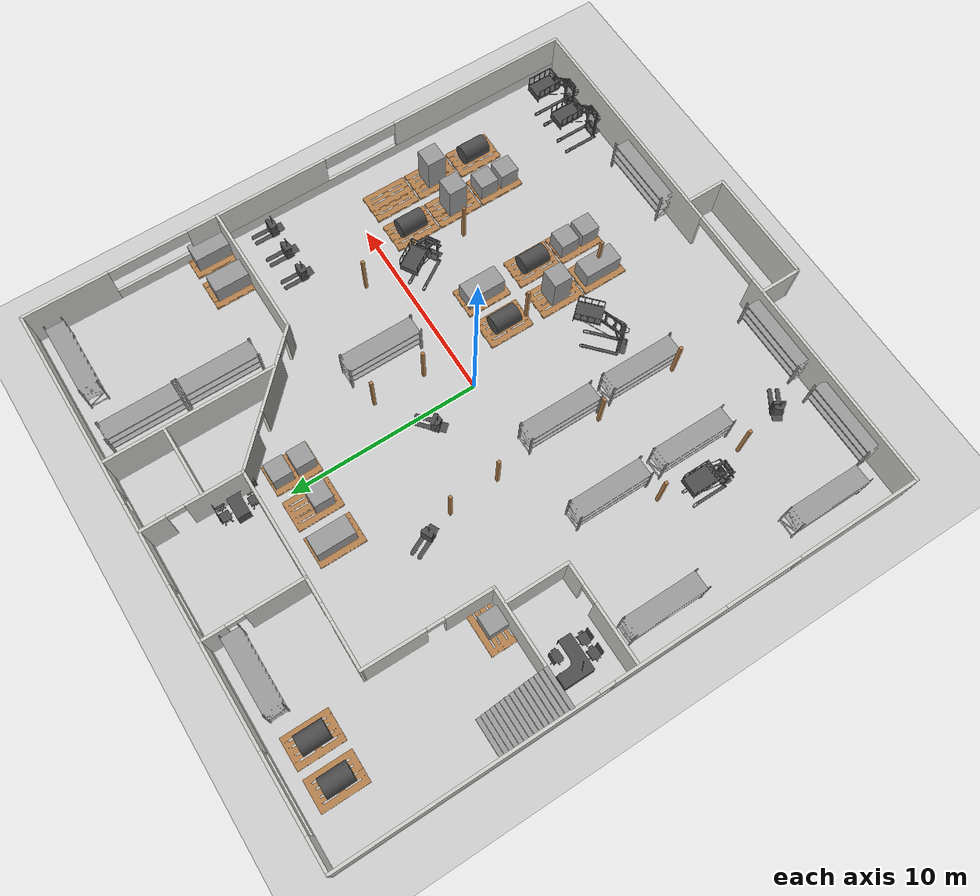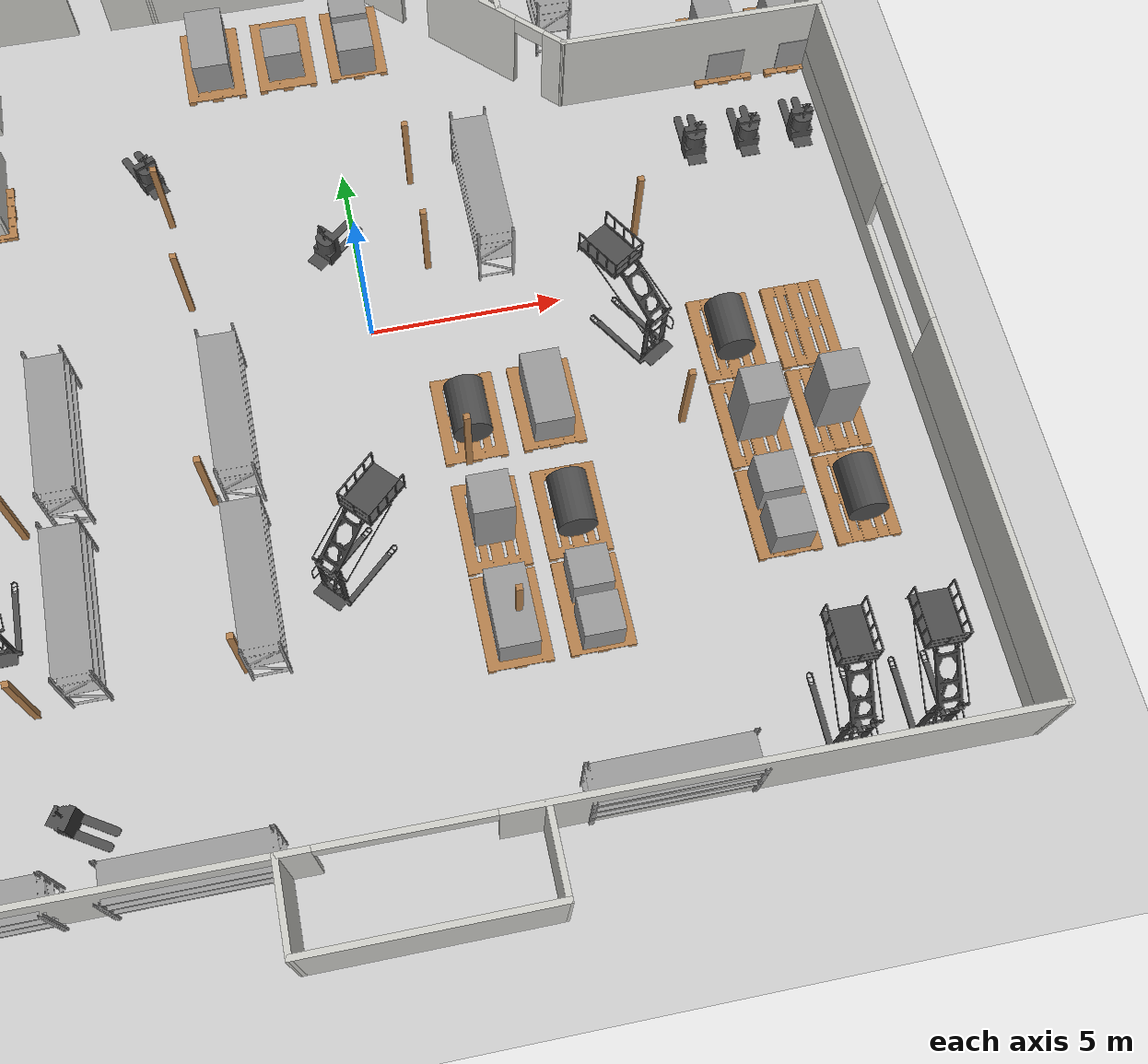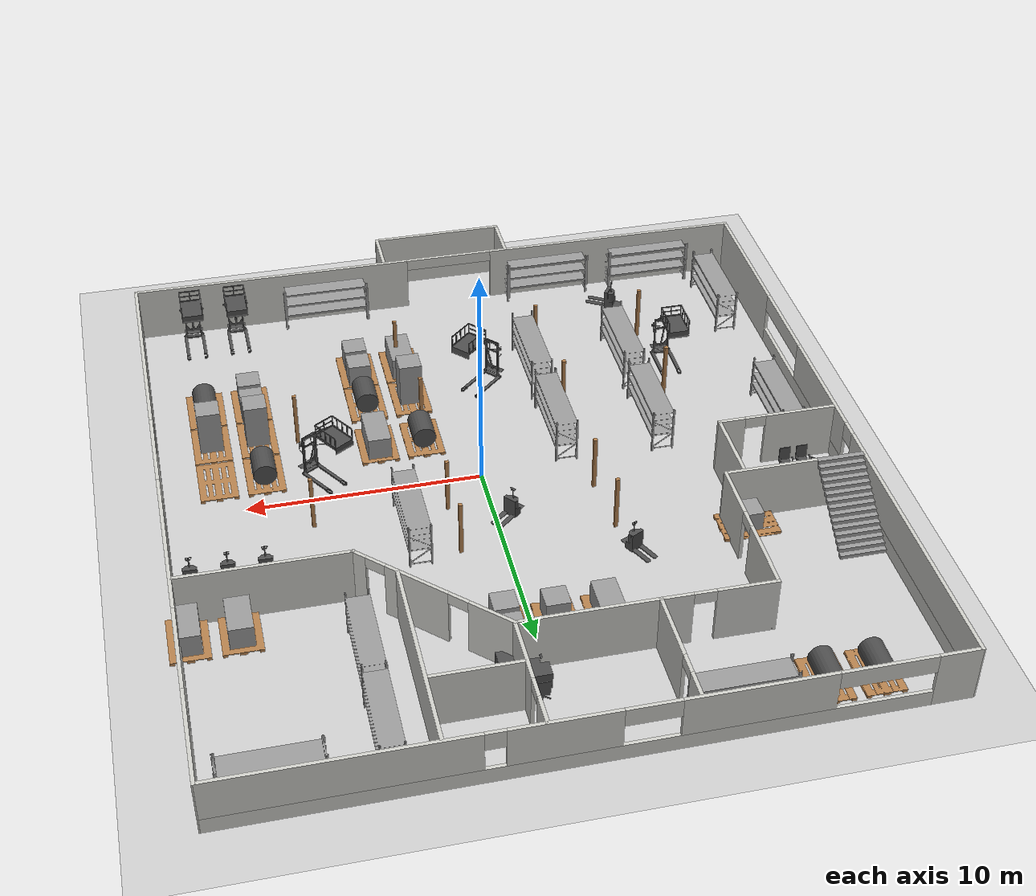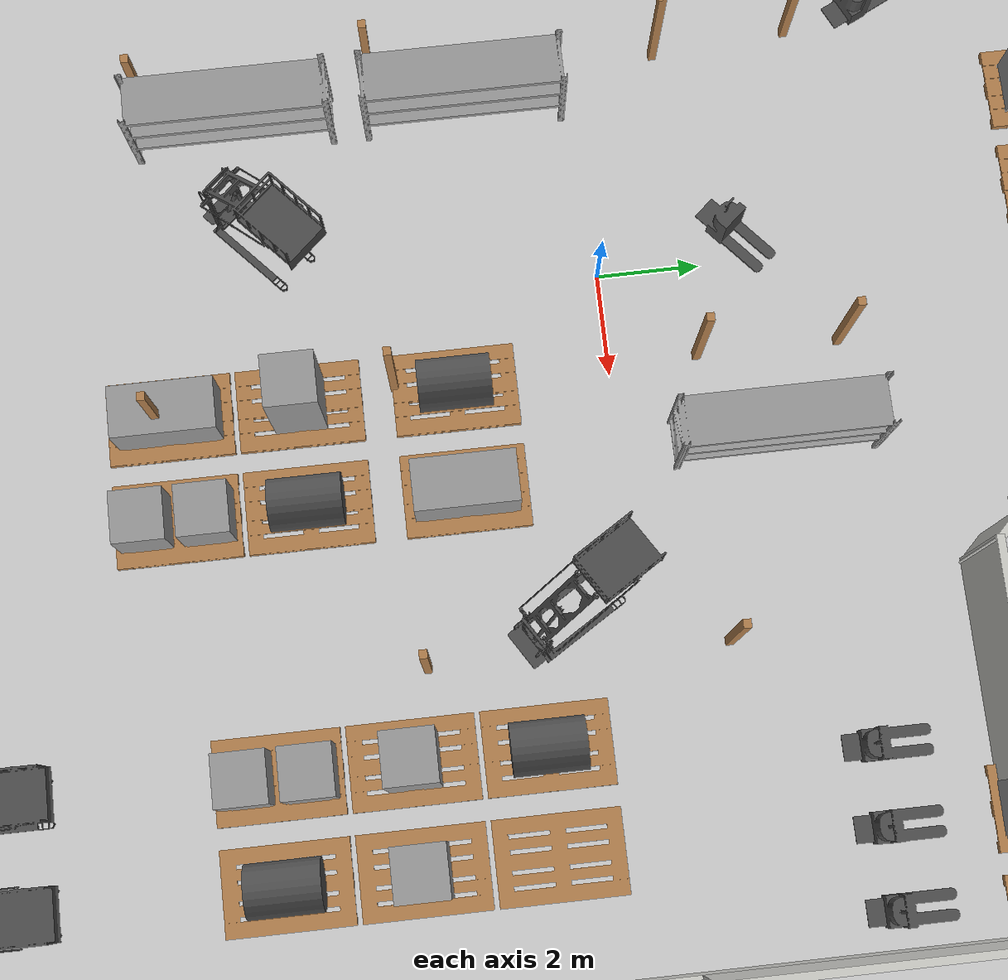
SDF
<sdf version="1.5">
 <world name="default">
  <include><uri>model://sun</uri></include>
  <include><uri>model://ground_plane</uri></include>
  <include><uri>model://Warehouse</uri><name>Warehouse</name></include>
  <include><uri>model://office_desk</uri><pose>-14 3 0 0 0 0</pose></include>
  <include><uri>model://warehouse_elevator</uri><pose>-2 -7 0 0 0 -0.83</pose></include>
  <include><uri>model://warehouse_elevator</uri><pose>7 -2 0 0 0 0.56</pose></include>
  <include><uri>model://warehouse_elevator</uri><pose>-10 -7 0 0 0 0</pose></include>
  <include><uri>model://warehouse_elevator</uri><pose>9 -13 0 0 0 0</pose></include>
  <include><uri>model://warehouse_elevator</uri><pose>11 -13 0 0 0 0</pose></include>
  <include><uri>model://pallet</uri><pose>11 -7 0 0 0 0</pose></include>
  <include><uri>model://pallet</uri><pose>9 -7 0 0 0 0</pose></include>
  <include><uri>model://pallet</uri><pose>11 -4.5 0 0 0 0</pose></include>
  <include><uri>model://pallet</uri><pose>9 -4.5 0 0 0 0</pose></include>
  <include><uri>model://pallet</uri><pose>11 -2 0 0 0 0</pose></include>
  <include><uri>model://pallet</uri><pose>9 -2 0 0 0 0</pose></include>
  <include><uri>model://pallet</uri><pose>1 9.4 0 0 0 0</pose></include>
  <include><uri>model://pallet</uri><pose>-1 9.4 0 0 0 0</pose></include>
  <include><uri>model://pallet</uri><pose>-3 9.4 0 0 0 0</pose></include>
  <include><uri>model://pallet</uri><pose>2 -8.5 0 0 0 0</pose></include>
  <include><uri>model://pallet</uri><pose>2 -6 0 0 0 0</pose></include>
  <include><uri>model://pallet</uri><pose>2 -3 0 0 0 0</pose></include>
  <include><uri>model://pallet</uri><pose>4 -8.5 0 0 0 0</pose></include>
  <include><uri>model://pallet</uri><pose>4 -6 0 0 0 0</pose></include>
  <include><uri>model://pallet</uri><pose>4 -3 0 0 0 0</pose></include>
  <include><uri>model://shelving_long</uri><pose>-13 -12 0 0 0 0</pose></include>
  <include><uri>model://shelving_long</uri><pose>-13 -3 0 0 0 0</pose></include>
  <include><uri>model://shelving_long</uri><pose>-7.53 -8.6 0 0 0 0</pose></include>
  <include><uri>model://shelving_long</uri><pose>-7.53 -4 0 0 0 0</pose></include>
  <include><uri>model://shelving_long</uri><pose>-3.32 -4.22 0 0 0 0</pose></include>
  <include><uri>model://shelving_long</uri><pose>-3.32 -8.76 0 0 0 0</pose></include>
  <include><uri>model://shelving_long</uri><pose>-9 -12.7 0 0 0 1.57079</pose></include>
  <include><uri>model://shelving_long</uri><pose>-4 -12.7 0 0 0 1.57079</pose></include>
  <include><uri>model://shelving_long</uri><pose>6.7 -12.7 0 0 0 1.57079</pose></include>
  <include><uri>model://shelving_long</uri><pose>4 1 0 0 0 0</pose></include>
  <include><uri>model://fork_lift</uri><pose>8 5 0 0 0 0</pose></include>
  <include><uri>model://fork_lift</uri><pose>9.5 5 0 0 0 0</pose></include>
  <include><uri>model://fork_lift</uri><pose>11 5 0 0 0 0</pose></include>
  <include><uri>model://fork_lift</uri><pose>-7 6 0 0 0 0.45</pose></include>
  <include><uri>model://fork_lift</uri><pose>-1 4.5 0 0 0 -0.86</pose></include>
  <include><uri>model://fork_lift</uri><pose>-7 -10.5 0 0 0 -2.12</pose></include>
  <include><uri>model://square_box</uri><pose>1 10 0.64 0 0 0</pose></include>
  <include><uri>model://square_box</uri><pose>1 8.8 0.64 0 0 0</pose></include>
  <include><uri>model://square_box</uri><pose>-1 9 0.64 0 0 0</pose></include>
  <include><uri>model://rectangular_box</uri><pose>-3 9.5 0.64 0 0 0</pose></include>
  <include><uri>model://rectangular_box</uri><pose>11 7.15 0.64 0 0 0</pose></include>
  <include><uri>model://rectangular_box</uri><pose>13 7.15 0.64 0 0 0</pose></include>
  <include><uri>model://square_box</uri><pose>-10 5.5 0.5 0 0 0</pose></include>
  <include><uri>model://cylinder_box</uri><pose>-10 14.5 0.64 1.57079 0 0</pose></include>
  <include><uri>model://cylinder_box</uri><pose>-12 14.5 0.64 1.57079 0 0</pose></include>
  <include><uri>model://rectangular_box</uri><pose>2 -8.5 0.64 0 0 0</pose></include>
  <include><uri>model://rectangular_box</uri><pose>2 -6 1.14 1.57079 0 0</pose></include>
  <include><uri>model://square_box</uri><pose>4 -7.9 0.64 0 0 0</pose></include>
  <include><uri>model://square_box</uri><pose>4 -9.1 0.64 0 0 0</pose></include>
  <include><uri>model://cylinder_box</uri><pose>2 -3 0.64 1.57079 0 0</pose></include>
  <include><uri>model://cylinder_box</uri><pose>4 -6 0.64 1.57079 0 0</pose></include>
  <include><uri>model://rectangular_box</uri><pose>4 -3 0.64 0 0 0</pose></include>
  <include><uri>model://square_box</uri><pose>9 -7.6 0.64 0 0 0</pose></include>
  <include><uri>model://square_box</uri><pose>9 -6.4 0.64 0 0 0</pose></include>
  <include><uri>model://cylinder_box</uri><pose>11 -7 0.64 1.57079 0 0</pose></include>
  <include><uri>model://cylinder_box</uri><pose>9 -2 0.64 1.57079 0 0</pose></include>
  <include><uri>model://rectangular_box</uri><pose>9 -4.5 1.14 1.57079 0 0</pose></include>
  <include><uri>model://rectangular_box</uri><pose>11 -4.5 1.14 1.57079 0 0</pose></include>
  <include><uri>model://office_desk</uri><pose>1.8 12.6 0 0 0 3.14159</pose></include>
  <include><uri>model://office_desk</uri><pose>1.8 12.6 0 0 0 3.14159</pose></include>
  <include><uri>model://pallet</uri><pose>-12 14.55 0 0 0 0</pose></include>
  <include><uri>model://pallet</uri><pose>-10 14.55 0 0 0 0</pose></include>
  <include><uri>model://pallet</uri><pose>-10 5.5 0 0 0 -1.57079</pose></include>
  <include><uri>model://shelving_long</uri><pose>-4.5 15.75 0 0 0 1.57079</pose></include>
  <include><uri>model://pallet</uri><pose>13 7.2 0 0 0 0</pose></include>
  <include><uri>model://pallet</uri><pose>11 7.2 0 0 0 0</pose></include>
  <include><uri>model://shelving_long</uri><pose>7 12 0 0 0 0</pose></include>
  <include><uri>model://shelving_long</uri><pose>7 8 0 0 0 0</pose></include>
  <include><uri>model://shelving_long</uri><pose>12.7 15.9 0 0 0 1.57079</pose></include>
 </world>
</sdf>

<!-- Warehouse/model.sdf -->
<sdf version='1.5'>
  <model name='Warehouse'>
    <pose>-0.828821 0.478615 0 0 -0 0</pose>
    <link name='Stairs_0'>
      <visual name='Stairs_0_Visual_0'>
        <pose>-13.1664 7.72962 0.083333 0 -0 0</pose>
        <geometry>
          <box>
            <size>2 0.233333 0.166667</size>
          </box>
        </geometry>
        <material>
          <script>
            <uri>file://media/materials/scripts/gazebo.material</uri>
            <name>Gazebo/Grey</name>
          </script>
          <ambient>1 1 1 1</ambient>
        </material>
      </visual>
      <collision name='Stairs_0_Collision_0'>
        <geometry>
          <box>
            <size>2 0.233333 0.166667</size>
          </box>
        </geometry>
        <pose>-13.1664 7.72962 0.083333 0 -0 0</pose>
      </collision>
      <visual name='Stairs_0_Visual_1'>
        <pose>-13.1664 7.49628 0.25 0 -0 0</pose>
        <geometry>
          <box>
            <size>2 0.233335 0.166668</size>
          </box>
        </geometry>
        <material>
          <script>
            <uri>file://media/materials/scripts/gazebo.material</uri>
            <name>Gazebo/Grey</name>
          </script>
          <ambient>1 1 1 1</ambient>
        </material>
      </visual>
      <collision name='Stairs_0_Collision_1'>
        <geometry>
          <box>
            <size>2 0.233335 0.166668</size>
          </box>
        </geometry>
        <pose>-13.1664 7.49628 0.25 0 -0 0</pose>
      </collision>
      <visual name='Stairs_0_Visual_2'>
        <pose>-13.1664 7.26295 0.416667 0 -0 0</pose>
        <geometry>
          <box>
            <size>2 0.233335 0.166668</size>
          </box>
        </geometry>
        <material>
          <script>
            <uri>file://media/materials/scripts/gazebo.material</uri>
            <name>Gazebo/Grey</name>
          </script>
          <ambient>1 1 1 1</ambient>
        </material>
      </visual>
      <collision name='Stairs_0_Collision_2'>
        <geometry>
          <box>
            <size>2 0.233335 0.166668</size>
          </box>
        </geometry>
        <pose>-13.1664 7.26295 0.416667 0 -0 0</pose>
      </collision>
      <visual name='Stairs_0_Visual_3'>
        <pose>-13.1664 7.02962 0.583333 0 -0 0</pose>
        <geometry>
          <box>
            <size>2 0.233335 0.166668</size>
          </box>
        </geometry>
        <material>
          <script>
            <uri>file://media/materials/scripts/gazebo.material</uri>
            <name>Gazebo/Grey</name>
          </script>
          <ambient>1 1 1 1</ambient>
        </material>
      </visual>
      <collision name='Stairs_0_Collision_3'>
        <geometry>
          <box>
            <size>2 0.233335 0.166668</size>
          </box>
        </geometry>
        <pose>-13.1664 7.02962 0.583333 0 -0 0</pose>
      </collision>
      <visual name='Stairs_0_Visual_4'>
        <pose>-13.1664 6.79628 0.75 0 -0 0</pose>
        <geometry>
          <box>
            <size>2 0.233335 0.166668</size>
          </box>
        </geometry>
        <material>
          <script>
            <uri>file://media/materials/scripts/gazebo.material</uri>
            <name>Gazebo/Grey</name>
          </script>
          <ambient>1 1 1 1</ambient>
        </material>
      </visual>
      <collision name='Stairs_0_Collision_4'>
        <geometry>
          <box>
            <size>2 0.233335 0.166668</size>
          </box>
        </geometry>
        <pose>-13.1664 6.79628 0.75 0 -0 0</pose>
      </collision>
      <visual name='Stairs_0_Visual_5'>
        <pose>-13.1664 6.56295 0.916667 0 -0 0</pose>
        <geometry>
          <box>
            <size>2 0.233335 0.166668</size>
          </box>
        </geometry>
        <material>
          <script>
            <uri>file://media/materials/scripts/gazebo.material</uri>
            <name>Gazebo/Grey</name>
          </script>
          <ambient>1 1 1 1</ambient>
        </material>
      </visual>
      <collision name='Stairs_0_Collision_5'>
        <geometry>
          <box>
            <size>2 0.233335 0.166668</size>
          </box>
        </geometry>
        <pose>-13.1664 6.56295 0.916667 0 -0 0</pose>
      </collision>
      <visual name='Stairs_0_Visual_6'>
        <pose>-13.1664 6.32962 1.08333 0 -0 0</pose>
        <geometry>
          <box>
            <size>2 0.233335 0.166668</size>
          </box>
        </geometry>
        <material>
          <script>
            <uri>file://media/materials/scripts/gazebo.material</uri>
            <name>Gazebo/Grey</name>
          </script>
          <ambient>1 1 1 1</ambient>
        </material>
      </visual>
      <collision name='Stairs_0_Collision_6'>
        <geometry>
          <box>
            <size>2 0.233335 0.166668</size>
          </box>
        </geometry>
        <pose>-13.1664 6.32962 1.08333 0 -0 0</pose>
      </collision>
      <visual name='Stairs_0_Visual_7'>
        <pose>-13.1664 6.09628 1.25 0 -0 0</pose>
        <geometry>
          <box>
            <size>2 0.233335 0.166668</size>
          </box>
        </geometry>
        <material>
          <script>
            <uri>file://media/materials/scripts/gazebo.material</uri>
            <name>Gazebo/Grey</name>
          </script>
          <ambient>1 1 1 1</ambient>
        </material>
      </visual>
      <collision name='Stairs_0_Collision_7'>
        <geometry>
          <box>
            <size>2 0.233335 0.166668</size>
          </box>
        </geometry>
        <pose>-13.1664 6.09628 1.25 0 -0 0</pose>
      </collision>
      <visual name='Stairs_0_Visual_8'>
        <pose>-13.1664 5.86295 1.41667 0 -0 0</pose>
        <geometry>
          <box>
            <size>2 0.233335 0.166668</size>
          </box>
        </geometry>
        <material>
          <script>
            <uri>file://media/materials/scripts/gazebo.material</uri>
            <name>Gazebo/Grey</name>
          </script>
          <ambient>1 1 1 1</ambient>
        </material>
      </visual>
      <collision name='Stairs_0_Collision_8'>
        <geometry>
          <box>
            <size>2 0.233335 0.166668</size>
          </box>
        </geometry>
        <pose>-13.1664 5.86295 1.41667 0 -0 0</pose>
      </collision>
      <visual name='Stairs_0_Visual_9'>
        <pose>-13.1664 5.62962 1.58333 0 -0 0</pose>
        <geometry>
          <box>
            <size>2 0.233335 0.166668</size>
          </box>
        </geometry>
        <material>
          <script>
            <uri>file://media/materials/scripts/gazebo.material</uri>
            <name>Gazebo/Grey</name>
          </script>
          <ambient>1 1 1 1</ambient>
        </material>
      </visual>
      <collision name='Stairs_0_Collision_9'>
        <geometry>
          <box>
            <size>2 0.233335 0.166668</size>
          </box>
        </geometry>
        <pose>-13.1664 5.62962 1.58333 0 -0 0</pose>
      </collision>
      <visual name='Stairs_0_Visual_10'>
        <pose>-13.1664 5.39628 1.75 0 -0 0</pose>
        <geometry>
          <box>
            <size>2 0.233335 0.166668</size>
          </box>
        </geometry>
        <material>
          <script>
            <uri>file://media/materials/scripts/gazebo.material</uri>
            <name>Gazebo/Grey</name>
          </script>
          <ambient>1 1 1 1</ambient>
        </material>
      </visual>
      <collision name='Stairs_0_Collision_10'>
        <geometry>
          <box>
            <size>2 0.233335 0.166668</size>
          </box>
        </geometry>
        <pose>-13.1664 5.39628 1.75 0 -0 0</pose>
      </collision>
      <visual name='Stairs_0_Visual_11'>
        <pose>-13.1664 5.16295 1.91667 0 -0 0</pose>
        <geometry>
          <box>
            <size>2 0.233335 0.166668</size>
          </box>
        </geometry>
        <material>
          <script>
            <uri>file://media/materials/scripts/gazebo.material</uri>
            <name>Gazebo/Grey</name>
          </script>
          <ambient>1 1 1 1</ambient>
        </material>
      </visual>
      <collision name='Stairs_0_Collision_11'>
        <geometry>
          <box>
            <size>2 0.233335 0.166668</size>
          </box>
        </geometry>
        <pose>-13.1664 5.16295 1.91667 0 -0 0</pose>
      </collision>
      <visual name='Stairs_0_Visual_12'>
        <pose>-13.1664 4.92962 2.08333 0 -0 0</pose>
        <geometry>
          <box>
            <size>2 0.233335 0.166668</size>
          </box>
        </geometry>
        <material>
          <script>
            <uri>file://media/materials/scripts/gazebo.material</uri>
            <name>Gazebo/Grey</name>
          </script>
          <ambient>1 1 1 1</ambient>
        </material>
      </visual>
      <collision name='Stairs_0_Collision_12'>
        <geometry>
          <box>
            <size>2 0.233335 0.166668</size>
          </box>
        </geometry>
        <pose>-13.1664 4.92962 2.08333 0 -0 0</pose>
      </collision>
      <visual name='Stairs_0_Visual_13'>
        <pose>-13.1664 4.69628 2.25 0 -0 0</pose>
        <geometry>
          <box>
            <size>2 0.233335 0.166668</size>
          </box>
        </geometry>
        <material>
          <script>
            <uri>file://media/materials/scripts/gazebo.material</uri>
            <name>Gazebo/Grey</name>
          </script>
          <ambient>1 1 1 1</ambient>
        </material>
      </visual>
      <collision name='Stairs_0_Collision_13'>
        <geometry>
          <box>
            <size>2 0.233335 0.166668</size>
          </box>
        </geometry>
        <pose>-13.1664 4.69628 2.25 0 -0 0</pose>
      </collision>
      <visual name='Stairs_0_Visual_14'>
        <pose>-13.1664 4.46295 2.41667 0 -0 0</pose>
        <geometry>
          <box>
            <size>2 0.233335 0.166668</size>
          </box>
        </geometry>
        <material>
          <script>
            <uri>file://media/materials/scripts/gazebo.material</uri>
            <name>Gazebo/Grey</name>
          </script>
          <ambient>1 1 1 1</ambient>
        </material>
      </visual>
      <collision name='Stairs_0_Collision_14'>
        <geometry>
          <box>
            <size>2 0.233335 0.166668</size>
          </box>
        </geometry>
        <pose>-13.1664 4.46295 2.41667 0 -0 0</pose>
      </collision>
    </link>
    <link name='Wall_0'>
      <pose>-0.02636 16.0163 0 0 -0 0.002368</pose>
      <visual name='Wall_0_Visual_0'>
        <pose>-13.3852 0 1.25 0 -0 0</pose>
        <geometry>
          <box>
            <size>1.73847 0.15 2.5</size>
          </box>
        </geometry>
        <material>
          <script>
            <uri>file://media/materials/scripts/gazebo.material</uri>
            <name>Gazebo/CeilingTiled</name>
          </script>
          <ambient>1 1 1 1</ambient>
        </material>
      </visual>
      <collision name='Wall_0_Collision_0'>
        <geometry>
          <box>
            <size>1.73847 0.15 2.5</size>
          </box>
        </geometry>
        <pose>-13.3852 0 1.25 0 -0 0</pose>
      </collision>
      <visual name='Wall_0_Visual_1'>
        <pose>0.869234 0 0.35 0 -0 0</pose>
        <geometry>
          <box>
            <size>26.7704 0.15 0.7</size>
          </box>
        </geometry>
        <material>
          <script>
            <uri>file://media/materials/scripts/gazebo.material</uri>
            <name>Gazebo/CeilingTiled</name>
          </script>
          <ambient>1 1 1 1</ambient>
        </material>
      </visual>
      <collision name='Wall_0_Collision_1'>
        <geometry>
          <box>
            <size>26.7704 0.15 0.7</size>
          </box>
        </geometry>
        <pose>0.869234 0 0.35 0 -0 0</pose>
      </collision>
      <visual name='Wall_0_Visual_2'>
        <pose>-5.8172 0 1.6 0 -0 0</pose>
        <geometry>
          <box>
            <size>5.85391 0.15 1.8</size>
          </box>
        </geometry>
        <material>
          <script>
            <uri>file://media/materials/scripts/gazebo.material</uri>
            <name>Gazebo/CeilingTiled</name>
          </script>
          <ambient>1 1 1 1</ambient>
        </material>
      </visual>
      <collision name='Wall_0_Collision_2'>
        <geometry>
          <box>
            <size>5.85391 0.15 1.8</size>
          </box>
        </geometry>
        <pose>-5.8172 0 1.6 0 -0 0</pose>
      </collision>
      <visual name='Wall_0_Visual_3'>
        <pose>1.3669 0 1.6 0 -0 0</pose>
        <geometry>
          <box>
            <size>4.22553 0.15 1.8</size>
          </box>
        </geometry>
        <material>
          <script>
            <uri>file://media/materials/scripts/gazebo.material</uri>
            <name>Gazebo/CeilingTiled</name>
          </script>
          <ambient>1 1 1 1</ambient>
        </material>
      </visual>
      <collision name='Wall_0_Collision_3'>
        <geometry>
          <box>
            <size>4.22553 0.15 1.8</size>
          </box>
        </geometry>
        <pose>1.3669 0 1.6 0 -0 0</pose>
      </collision>
      <visual name='Wall_0_Visual_4'>
        <pose>9.26704 0 1.6 0 -0 0</pose>
        <geometry>
          <box>
            <size>9.97475 0.15 1.8</size>
          </box>
        </geometry>
        <material>
          <script>
            <uri>file://media/materials/scripts/gazebo.material</uri>
            <name>Gazebo/CeilingTiled</name>
          </script>
          <ambient>1 1 1 1</ambient>
        </material>
      </visual>
      <collision name='Wall_0_Collision_4'>
        <geometry>
          <box>
            <size>9.97475 0.15 1.8</size>
          </box>
        </geometry>
        <pose>9.26704 0 1.6 0 -0 0</pose>
      </collision>
      <visual name='Wall_0_Visual_5'>
        <pose>-10.6301 0 2.1 0 -0 0</pose>
        <geometry>
          <box>
            <size>3.7718 0.15 0.8</size>
          </box>
        </geometry>
        <material>
          <script>
            <uri>file://media/materials/scripts/gazebo.material</uri>
            <name>Gazebo/CeilingTiled</name>
          </script>
          <ambient>1 1 1 1</ambient>
        </material>
      </visual>
      <collision name='Wall_0_Collision_5'>
        <geometry>
          <box>
            <size>3.7718 0.15 0.8</size>
          </box>
        </geometry>
        <pose>-10.6301 0 2.1 0 -0 0</pose>
      </collision>
      <visual name='Wall_0_Visual_6'>
        <pose>-1.81805 0 2.1 0 -0 0</pose>
        <geometry>
          <box>
            <size>2.14438 0.15 0.8</size>
          </box>
        </geometry>
        <material>
          <script>
            <uri>file://media/materials/scripts/gazebo.material</uri>
            <name>Gazebo/CeilingTiled</name>
          </script>
          <ambient>1 1 1 1</ambient>
        </material>
      </visual>
      <collision name='Wall_0_Collision_6'>
        <geometry>
          <box>
            <size>2.14438 0.15 0.8</size>
          </box>
        </geometry>
        <pose>-1.81805 0 2.1 0 -0 0</pose>
      </collision>
      <visual name='Wall_0_Visual_7'>
        <pose>3.87967 0 2.1 0 -0 0</pose>
        <geometry>
          <box>
            <size>0.8 0.15 0.8</size>
          </box>
        </geometry>
        <material>
          <script>
            <uri>file://media/materials/scripts/gazebo.material</uri>
            <name>Gazebo/CeilingTiled</name>
          </script>
          <ambient>1 1 1 1</ambient>
        </material>
      </visual>
      <collision name='Wall_0_Collision_7'>
        <geometry>
          <box>
            <size>0.8 0.15 0.8</size>
          </box>
        </geometry>
        <pose>3.87967 0 2.1 0 -0 0</pose>
      </collision>
    </link>
    <link name='Wall_1'>
      <pose>14.2062 0.999838 0 0 0 -1.5708</pose>
      <visual name='Wall_1_Visual_0'>
        <pose>-12.8607 0 1.25 0 -0 0</pose>
        <geometry>
          <box>
            <size>4.52857 0.15 2.5</size>
          </box>
        </geometry>
        <material>
          <script>
            <uri>file://media/materials/scripts/gazebo.material</uri>
            <name>Gazebo/CeilingTiled</name>
          </script>
          <ambient>1 1 1 1</ambient>
        </material>
      </visual>
      <collision name='Wall_1_Collision_0'>
        <geometry>
          <box>
            <size>4.52857 0.15 2.5</size>
          </box>
        </geometry>
        <pose>-12.8607 0 1.25 0 -0 0</pose>
      </collision>
      <visual name='Wall_1_Visual_1'>
        <pose>2.26428 0 0.35 0 -0 0</pose>
        <geometry>
          <box>
            <size>25.7214 0.15 0.7</size>
          </box>
        </geometry>
        <material>
          <script>
            <uri>file://media/materials/scripts/gazebo.material</uri>
            <name>Gazebo/CeilingTiled</name>
          </script>
          <ambient>1 1 1 1</ambient>
        </material>
      </visual>
      <collision name='Wall_1_Collision_1'>
        <geometry>
          <box>
            <size>25.7214 0.15 0.7</size>
          </box>
        </geometry>
        <pose>2.26428 0 0.35 0 -0 0</pose>
      </collision>
      <visual name='Wall_1_Visual_2'>
        <pose>-2.58187 0 1.6 0 -0 0</pose>
        <geometry>
          <box>
            <size>7.63312 0.15 1.8</size>
          </box>
        </geometry>
        <material>
          <script>
            <uri>file://media/materials/scripts/gazebo.material</uri>
            <name>Gazebo/CeilingTiled</name>
          </script>
          <ambient>1 1 1 1</ambient>
        </material>
      </visual>
      <collision name='Wall_1_Collision_2'>
        <geometry>
          <box>
            <size>7.63312 0.15 1.8</size>
          </box>
        </geometry>
        <pose>-2.58187 0 1.6 0 -0 0</pose>
      </collision>
      <visual name='Wall_1_Visual_3'>
        <pose>10.1798 0 1.6 0 -0 0</pose>
        <geometry>
          <box>
            <size>9.89031 0.15 1.8</size>
          </box>
        </geometry>
        <material>
          <script>
            <uri>file://media/materials/scripts/gazebo.material</uri>
            <name>Gazebo/CeilingTiled</name>
          </script>
          <ambient>1 1 1 1</ambient>
        </material>
      </visual>
      <collision name='Wall_1_Collision_3'>
        <geometry>
          <box>
            <size>9.89031 0.15 1.8</size>
          </box>
        </geometry>
        <pose>10.1798 0 1.6 0 -0 0</pose>
      </collision>
      <visual name='Wall_1_Visual_4'>
        <pose>-8.49743 0 2.1 0 -0 0</pose>
        <geometry>
          <box>
            <size>4.198 0.15 0.8</size>
          </box>
        </geometry>
        <material>
          <script>
            <uri>file://media/materials/scripts/gazebo.material</uri>
            <name>Gazebo/CeilingTiled</name>
          </script>
          <ambient>1 1 1 1</ambient>
        </material>
      </visual>
      <collision name='Wall_1_Collision_4'>
        <geometry>
          <box>
            <size>4.198 0.15 0.8</size>
          </box>
        </geometry>
        <pose>-8.49743 0 2.1 0 -0 0</pose>
      </collision>
      <visual name='Wall_1_Visual_5'>
        <pose>3.23468 0 2.1 0 -0 0</pose>
        <geometry>
          <box>
            <size>4 0.15 0.8</size>
          </box>
        </geometry>
        <material>
          <script>
            <uri>file://media/materials/scripts/gazebo.material</uri>
            <name>Gazebo/CeilingTiled</name>
          </script>
          <ambient>1 1 1 1</ambient>
        </material>
      </visual>
      <collision name='Wall_1_Collision_5'>
        <geometry>
          <box>
            <size>4 0.15 0.8</size>
          </box>
        </geometry>
        <pose>3.23468 0 2.1 0 -0 0</pose>
      </collision>
    </link>
    <link name='Wall_10'>
      <collision name='Wall_10_Collision'>
        <geometry>
          <box>
            <size>5.75 0.15 2.5</size>
          </box>
        </geometry>
        <pose>0 0 1.25 0 -0 0</pose>
      </collision>
      <visual name='Wall_10_Visual'>
        <pose>0 0 1.25 0 -0 0</pose>
        <geometry>
          <box>
            <size>5.75 0.15 2.5</size>
          </box>
        </geometry>
        <material>
          <script>
            <uri>file://media/materials/scripts/gazebo.material</uri>
            <name>Gazebo/CeilingTiled</name>
          </script>
          <ambient>1 1 1 1</ambient>
        </material>
      </visual>
      <pose>-0.798179 10.9214 0 0 -0 0</pose>
    </link>
    <link name='Wall_11'>
      <pose>4.60032 8.34539 0 0 0 -0.78105</pose>
      <visual name='Wall_11_Visual_0'>
        <pose>-2.69462 0 1.25 0 -0 0</pose>
        <geometry>
          <box>
            <size>2.07932 0.15 2.5</size>
          </box>
        </geometry>
        <material>
          <script>
            <uri>file://media/materials/scripts/gazebo.material</uri>
            <name>Gazebo/CeilingTiled</name>
          </script>
          <ambient>1 1 1 1</ambient>
        </material>
      </visual>
      <collision name='Wall_11_Collision_0'>
        <geometry>
          <box>
            <size>2.07932 0.15 2.5</size>
          </box>
        </geometry>
        <pose>-2.69462 0 1.25 0 -0 0</pose>
      </collision>
      <visual name='Wall_11_Visual_1'>
        <pose>0.695837 0 1.25 0 -0 0</pose>
        <geometry>
          <box>
            <size>2.90159 0.15 2.5</size>
          </box>
        </geometry>
        <material>
          <script>
            <uri>file://media/materials/scripts/gazebo.material</uri>
            <name>Gazebo/CeilingTiled</name>
          </script>
          <ambient>1 1 1 1</ambient>
        </material>
      </visual>
      <collision name='Wall_11_Collision_1'>
        <geometry>
          <box>
            <size>2.90159 0.15 2.5</size>
          </box>
        </geometry>
        <pose>0.695837 0 1.25 0 -0 0</pose>
      </collision>
      <visual name='Wall_11_Visual_2'>
        <pose>3.39045 0 1.25 0 -0 0</pose>
        <geometry>
          <box>
            <size>0.687645 0.15 2.5</size>
          </box>
        </geometry>
        <material>
          <script>
            <uri>file://media/materials/scripts/gazebo.material</uri>
            <name>Gazebo/CeilingTiled</name>
          </script>
          <ambient>1 1 1 1</ambient>
        </material>
      </visual>
      <collision name='Wall_11_Collision_2'>
        <geometry>
          <box>
            <size>0.687645 0.15 2.5</size>
          </box>
        </geometry>
        <pose>3.39045 0 1.25 0 -0 0</pose>
      </collision>
      <visual name='Wall_11_Visual_3'>
        <pose>-1.20496 0 2.25 0 -0 0</pose>
        <geometry>
          <box>
            <size>0.9 0.15 0.5</size>
          </box>
        </geometry>
        <material>
          <script>
            <uri>file://media/materials/scripts/gazebo.material</uri>
            <name>Gazebo/CeilingTiled</name>
          </script>
          <ambient>1 1 1 1</ambient>
        </material>
      </visual>
      <collision name='Wall_11_Collision_3'>
        <geometry>
          <box>
            <size>0.9 0.15 0.5</size>
          </box>
        </geometry>
        <pose>-1.20496 0 2.25 0 -0 0</pose>
      </collision>
      <visual name='Wall_11_Visual_4'>
        <pose>2.59663 0 2.25 0 -0 0</pose>
        <geometry>
          <box>
            <size>0.9 0.15 0.5</size>
          </box>
        </geometry>
        <material>
          <script>
            <uri>file://media/materials/scripts/gazebo.material</uri>
            <name>Gazebo/CeilingTiled</name>
          </script>
          <ambient>1 1 1 1</ambient>
        </material>
      </visual>
      <collision name='Wall_11_Collision_4'>
        <geometry>
          <box>
            <size>0.9 0.15 0.5</size>
          </box>
        </geometry>
        <pose>2.59663 0 2.25 0 -0 0</pose>
      </collision>
    </link>
    <link name='Wall_12'>
      <collision name='Wall_12_Collision'>
        <geometry>
          <box>
            <size>7.15 0.15 2.5</size>
          </box>
        </geometry>
        <pose>0 0 1.25 0 -0 0</pose>
      </collision>
      <visual name='Wall_12_Visual'>
        <pose>0 0 1.25 0 -0 0</pose>
        <geometry>
          <box>
            <size>7.15 0.15 2.5</size>
          </box>
        </geometry>
        <material>
          <script>
            <uri>file://media/materials/scripts/gazebo.material</uri>
            <name>Gazebo/CeilingTiled</name>
          </script>
          <ambient>1 1 1 1</ambient>
        </material>
      </visual>
      <pose>10.6988 5.76938 0 0 -0 0</pose>
    </link>
    <link name='Wall_14'>
      <collision name='Wall_14_Collision'>
        <geometry>
          <box>
            <size>8.75 0.15 2.5</size>
          </box>
        </geometry>
        <pose>0 0 1.25 0 -0 0</pose>
      </collision>
      <visual name='Wall_14_Visual'>
        <pose>0 0 1.25 0 -0 0</pose>
        <geometry>
          <box>
            <size>8.75 0.15 2.5</size>
          </box>
        </geometry>
        <material>
          <script>
            <uri>file://media/materials/scripts/gazebo.material</uri>
            <name>Gazebo/CeilingTiled</name>
          </script>
          <ambient>1 1 1 1</ambient>
        </material>
      </visual>
      <pose>5.72782 11.6214 0 0 0 -1.5708</pose>
    </link>
    <link name='Wall_16'>
      <collision name='Wall_16_Collision'>
        <geometry>
          <box>
            <size>3.661 0.15 2.5</size>
          </box>
        </geometry>
        <pose>0 0 1.25 0 -0 0</pose>
      </collision>
      <visual name='Wall_16_Visual'>
        <pose>0 0 1.25 0 -0 0</pose>
        <geometry>
          <box>
            <size>3.661 0.15 2.5</size>
          </box>
        </geometry>
        <material>
          <script>
            <uri>file://media/materials/scripts/gazebo.material</uri>
            <name>Gazebo/CeilingTiled</name>
          </script>
          <ambient>1 1 1 1</ambient>
        </material>
      </visual>
      <pose>3.87332 12.9354 0 0 -0 0</pose>
    </link>
    <link name='Wall_18'>
      <pose>-11.5627 1.16038 0 0 -0 0</pose>
      <visual name='Wall_18_Visual_0'>
        <pose>-1.05217 0 1.25 0 -0 0</pose>
        <geometry>
          <box>
            <size>3.06306 0.15 2.5</size>
          </box>
        </geometry>
        <material>
          <script>
            <uri>file://media/materials/scripts/gazebo.material</uri>
            <name>Gazebo/CeilingTiled</name>
          </script>
          <ambient>1 1 1 1</ambient>
        </material>
      </visual>
      <collision name='Wall_18_Collision_0'>
        <geometry>
          <box>
            <size>3.06306 0.15 2.5</size>
          </box>
        </geometry>
        <pose>-1.05217 0 1.25 0 -0 0</pose>
      </collision>
      <visual name='Wall_18_Visual_1'>
        <pose>1.98153 0 1.25 0 -0 0</pose>
        <geometry>
          <box>
            <size>1.20433 0.15 2.5</size>
          </box>
        </geometry>
        <material>
          <script>
            <uri>file://media/materials/scripts/gazebo.material</uri>
            <name>Gazebo/CeilingTiled</name>
          </script>
          <ambient>1 1 1 1</ambient>
        </material>
      </visual>
      <collision name='Wall_18_Collision_1'>
        <geometry>
          <box>
            <size>1.20433 0.15 2.5</size>
          </box>
        </geometry>
        <pose>1.98153 0 1.25 0 -0 0</pose>
      </collision>
      <visual name='Wall_18_Visual_2'>
        <pose>0.929362 0 2.25 0 -0 0</pose>
        <geometry>
          <box>
            <size>0.9 0.15 0.5</size>
          </box>
        </geometry>
        <material>
          <script>
            <uri>file://media/materials/scripts/gazebo.material</uri>
            <name>Gazebo/CeilingTiled</name>
          </script>
          <ambient>1 1 1 1</ambient>
        </material>
      </visual>
      <collision name='Wall_18_Collision_2'>
        <geometry>
          <box>
            <size>0.9 0.15 0.5</size>
          </box>
        </geometry>
        <pose>0.929362 0 2.25 0 -0 0</pose>
      </collision>
    </link>
    <link name='Wall_19'>
      <collision name='Wall_19_Collision'>
        <geometry>
          <box>
            <size>3.311 0.15 2.5</size>
          </box>
        </geometry>
        <pose>0 0 1.25 0 -0 0</pose>
      </collision>
      <visual name='Wall_19_Visual'>
        <pose>0 0 1.25 0 -0 0</pose>
        <geometry>
          <box>
            <size>3.311 0.15 2.5</size>
          </box>
        </geometry>
        <material>
          <script>
            <uri>file://media/materials/scripts/gazebo.material</uri>
            <name>Gazebo/CeilingTiled</name>
          </script>
          <ambient>1 1 1 1</ambient>
        </material>
      </visual>
      <pose>-9.05418 2.74089 0 0 -0 1.5708</pose>
    </link>
    <link name='Wall_2'>
      <pose>-0.02636 -13.9587 0 0 -0 3.13515</pose>
      <visual name='Wall_2_Visual_0'>
        <pose>-7.9084 0 1.25 0 -0 0</pose>
        <geometry>
          <box>
            <size>12.6925 0.15 2.5</size>
          </box>
        </geometry>
        <material>
          <script>
            <uri>file://media/materials/scripts/gazebo.material</uri>
            <name>Gazebo/CeilingTiled</name>
          </script>
          <ambient>1 1 1 1</ambient>
        </material>
      </visual>
      <collision name='Wall_2_Collision_0'>
        <geometry>
          <box>
            <size>12.6925 0.15 2.5</size>
          </box>
        </geometry>
        <pose>-7.9084 0 1.25 0 -0 0</pose>
      </collision>
      <visual name='Wall_2_Visual_1'>
        <pose>8.34627 0 1.25 0 -0 0</pose>
        <geometry>
          <box>
            <size>11.8168 0.15 2.5</size>
          </box>
        </geometry>
        <material>
          <script>
            <uri>file://media/materials/scripts/gazebo.material</uri>
            <name>Gazebo/CeilingTiled</name>
          </script>
          <ambient>1 1 1 1</ambient>
        </material>
      </visual>
      <collision name='Wall_2_Collision_1'>
        <geometry>
          <box>
            <size>11.8168 0.15 2.5</size>
          </box>
        </geometry>
        <pose>8.34627 0 1.25 0 -0 0</pose>
      </collision>
      <visual name='Wall_2_Visual_2'>
        <pose>0.437868 0 2.25 0 -0 0</pose>
        <geometry>
          <box>
            <size>4 0.15 0.5</size>
          </box>
        </geometry>
        <material>
          <script>
            <uri>file://media/materials/scripts/gazebo.material</uri>
            <name>Gazebo/CeilingTiled</name>
          </script>
          <ambient>1 1 1 1</ambient>
        </material>
      </visual>
      <collision name='Wall_2_Collision_2'>
        <geometry>
          <box>
            <size>4 0.15 0.5</size>
          </box>
        </geometry>
        <pose>0.437868 0 2.25 0 -0 0</pose>
      </collision>
    </link>
    <link name='Wall_3'>
      <pose>-14.2057 1.05768 0 0 -0 1.5708</pose>
      <visual name='Wall_3_Visual_0'>
        <pose>-11.7124 0 1.25 0 -0 0</pose>
        <geometry>
          <box>
            <size>6.57512 0.15 2.5</size>
          </box>
        </geometry>
        <material>
          <script>
            <uri>file://media/materials/scripts/gazebo.material</uri>
            <name>Gazebo/CeilingTiled</name>
          </script>
          <ambient>1 1 1 1</ambient>
        </material>
      </visual>
      <collision name='Wall_3_Collision_0'>
        <geometry>
          <box>
            <size>6.57512 0.15 2.5</size>
          </box>
        </geometry>
        <pose>-11.7124 0 1.25 0 -0 0</pose>
      </collision>
      <visual name='Wall_3_Visual_1'>
        <pose>3.28756 0 0.35 0 -0 0</pose>
        <geometry>
          <box>
            <size>23.4249 0.15 0.7</size>
          </box>
        </geometry>
        <material>
          <script>
            <uri>file://media/materials/scripts/gazebo.material</uri>
            <name>Gazebo/CeilingTiled</name>
          </script>
          <ambient>1 1 1 1</ambient>
        </material>
      </visual>
      <collision name='Wall_3_Collision_1'>
        <geometry>
          <box>
            <size>23.4249 0.15 0.7</size>
          </box>
        </geometry>
        <pose>3.28756 0 0.35 0 -0 0</pose>
      </collision>
      <visual name='Wall_3_Visual_2'>
        <pose>-1.55506 0 1.6 0 -0 0</pose>
        <geometry>
          <box>
            <size>5.73965 0.15 1.8</size>
          </box>
        </geometry>
        <material>
          <script>
            <uri>file://media/materials/scripts/gazebo.material</uri>
            <name>Gazebo/CeilingTiled</name>
          </script>
          <ambient>1 1 1 1</ambient>
        </material>
      </visual>
      <collision name='Wall_3_Collision_2'>
        <geometry>
          <box>
            <size>5.73965 0.15 1.8</size>
          </box>
        </geometry>
        <pose>-1.55506 0 1.6 0 -0 0</pose>
      </collision>
      <visual name='Wall_3_Visual_3'>
        <pose>8.55738 0 1.6 0 -0 0</pose>
        <geometry>
          <box>
            <size>12.8852 0.15 1.8</size>
          </box>
        </geometry>
        <material>
          <script>
            <uri>file://media/materials/scripts/gazebo.material</uri>
            <name>Gazebo/CeilingTiled</name>
          </script>
          <ambient>1 1 1 1</ambient>
        </material>
      </visual>
      <collision name='Wall_3_Collision_3'>
        <geometry>
          <box>
            <size>12.8852 0.15 1.8</size>
          </box>
        </geometry>
        <pose>8.55738 0 1.6 0 -0 0</pose>
      </collision>
      <visual name='Wall_3_Visual_4'>
        <pose>-6.42488 0 2.1 0 -0 0</pose>
        <geometry>
          <box>
            <size>4 0.15 0.8</size>
          </box>
        </geometry>
        <material>
          <script>
            <uri>file://media/materials/scripts/gazebo.material</uri>
            <name>Gazebo/CeilingTiled</name>
          </script>
          <ambient>1 1 1 1</ambient>
        </material>
      </visual>
      <collision name='Wall_3_Collision_4'>
        <geometry>
          <box>
            <size>4 0.15 0.8</size>
          </box>
        </geometry>
        <pose>-6.42488 0 2.1 0 -0 0</pose>
      </collision>
      <visual name='Wall_3_Visual_5'>
        <pose>1.71476 0 2.1 0 -0 0</pose>
        <geometry>
          <box>
            <size>0.8 0.15 0.8</size>
          </box>
        </geometry>
        <material>
          <script>
            <uri>file://media/materials/scripts/gazebo.material</uri>
            <name>Gazebo/CeilingTiled</name>
          </script>
          <ambient>1 1 1 1</ambient>
        </material>
      </visual>
      <collision name='Wall_3_Collision_5'>
        <geometry>
          <box>
            <size>0.8 0.15 0.8</size>
          </box>
        </geometry>
        <pose>1.71476 0 2.1 0 -0 0</pose>
      </collision>
    </link>
    <link name='Wall_30'>
      <collision name='Wall_30_Collision'>
        <geometry>
          <box>
            <size>0.16 0.15 2.5</size>
          </box>
        </geometry>
        <pose>0 0 1.25 0 -0 0</pose>
      </collision>
      <visual name='Wall_30_Visual'>
        <pose>0 0 1.25 0 -0 0</pose>
        <geometry>
          <box>
            <size>0.16 0.15 2.5</size>
          </box>
        </geometry>
        <material>
          <script>
            <uri>file://media/materials/scripts/gazebo.material</uri>
            <name>Gazebo/Wood</name>
          </script>
          <ambient>1 1 1 1</ambient>
        </material>
      </visual>
      <pose>-3.74489 -4.49291 0 0 -0 0</pose>
    </link>
    <link name='Wall_32'>
      <collision name='Wall_32_Collision'>
        <geometry>
          <box>
            <size>0.16 0.15 2.5</size>
          </box>
        </geometry>
        <pose>0 0 1.25 0 -0 0</pose>
      </collision>
      <visual name='Wall_32_Visual'>
        <pose>0 0 1.25 0 -0 0</pose>
        <geometry>
          <box>
            <size>0.16 0.15 2.5</size>
          </box>
        </geometry>
        <material>
          <script>
            <uri>file://media/materials/scripts/gazebo.material</uri>
            <name>Gazebo/Wood</name>
          </script>
          <ambient>1 1 1 1</ambient>
        </material>
      </visual>
      <pose>-3.8864 3.85643 0 0 -0 0</pose>
    </link>
    <link name='Wall_34'>
      <collision name='Wall_34_Collision'>
        <geometry>
          <box>
            <size>0.16 0.15 2.5</size>
          </box>
        </geometry>
        <pose>0 0 1.25 0 -0 0</pose>
      </collision>
      <visual name='Wall_34_Visual'>
        <pose>0 0 1.25 0 -0 0</pose>
        <geometry>
          <box>
            <size>0.16 0.15 2.5</size>
          </box>
        </geometry>
        <material>
          <script>
            <uri>file://media/materials/scripts/gazebo.material</uri>
            <name>Gazebo/Wood</name>
          </script>
          <ambient>1 1 1 1</ambient>
        </material>
      </visual>
      <pose>2.62325 3.99794 0 0 -0 0</pose>
    </link>
    <link name='Wall_36'>
      <collision name='Wall_36_Collision'>
        <geometry>
          <box>
            <size>0.16 0.15 2.5</size>
          </box>
        </geometry>
        <pose>0 0 1.25 0 -0 0</pose>
      </collision>
      <visual name='Wall_36_Visual'>
        <pose>0 0 1.25 0 -0 0</pose>
        <geometry>
          <box>
            <size>0.16 0.15 2.5</size>
          </box>
        </geometry>
        <material>
          <script>
            <uri>file://media/materials/scripts/gazebo.material</uri>
            <name>Gazebo/Wood</name>
          </script>
          <ambient>1 1 1 1</ambient>
        </material>
      </visual>
      <pose>2.62325 1.23841 0 0 -0 0</pose>
    </link>
    <link name='Wall_38'>
      <collision name='Wall_38_Collision'>
        <geometry>
          <box>
            <size>0.16 0.15 2.5</size>
          </box>
        </geometry>
        <pose>0 0 1.25 0 -0 0</pose>
      </collision>
      <visual name='Wall_38_Visual'>
        <pose>0 0 1.25 0 -0 0</pose>
        <geometry>
          <box>
            <size>0.16 0.15 2.5</size>
          </box>
        </geometry>
        <material>
          <script>
            <uri>file://media/materials/scripts/gazebo.material</uri>
            <name>Gazebo/Wood</name>
          </script>
          <ambient>1 1 1 1</ambient>
        </material>
      </visual>
      <pose>-3.67413 1.16766 0 0 -0 0</pose>
    </link>
    <link name='Wall_40'>
      <collision name='Wall_40_Collision'>
        <geometry>
          <box>
            <size>0.16 0.15 2.5</size>
          </box>
        </geometry>
        <pose>0 0 1.25 0 -0 0</pose>
      </collision>
      <visual name='Wall_40_Visual'>
        <pose>0 0 1.25 0 -0 0</pose>
        <geometry>
          <box>
            <size>0.16 0.15 2.5</size>
          </box>
        </geometry>
        <material>
          <script>
            <uri>file://media/materials/scripts/gazebo.material</uri>
            <name>Gazebo/Wood</name>
          </script>
          <ambient>1 1 1 1</ambient>
        </material>
      </visual>
      <pose>2.62325 -4.63442 0 0 -0 0</pose>
    </link>
    <link name='Wall_42'>
      <collision name='Wall_42_Collision'>
        <geometry>
          <box>
            <size>0.16 0.15 2.5</size>
          </box>
        </geometry>
        <pose>0 0 1.25 0 -0 0</pose>
      </collision>
      <visual name='Wall_42_Visual'>
        <pose>0 0 1.25 0 -0 0</pose>
        <geometry>
          <box>
            <size>0.16 0.15 2.5</size>
          </box>
        </geometry>
        <material>
          <script>
            <uri>file://media/materials/scripts/gazebo.material</uri>
            <name>Gazebo/Wood</name>
          </script>
          <ambient>1 1 1 1</ambient>
        </material>
      </visual>
      <pose>-8.41485 -4.49291 0 0 -0 0</pose>
    </link>
    <link name='Wall_44'>
      <collision name='Wall_44_Collision'>
        <geometry>
          <box>
            <size>0.16 0.15 2.5</size>
          </box>
        </geometry>
        <pose>0 0 1.25 0 -0 0</pose>
      </collision>
      <visual name='Wall_44_Visual'>
        <pose>0 0 1.25 0 -0 0</pose>
        <geometry>
          <box>
            <size>0.16 0.15 2.5</size>
          </box>
        </geometry>
        <material>
          <script>
            <uri>file://media/materials/scripts/gazebo.material</uri>
            <name>Gazebo/Wood</name>
          </script>
          <ambient>1 1 1 1</ambient>
        </material>
      </visual>
      <pose>-8.48561 -9.09212 0 0 -0 0</pose>
    </link>
    <link name='Wall_48'>
      <collision name='Wall_48_Collision'>
        <geometry>
          <box>
            <size>0.16 0.15 2.5</size>
          </box>
        </geometry>
        <pose>0 0 1.25 0 -0 0</pose>
      </collision>
      <visual name='Wall_48_Visual'>
        <pose>0 0 1.25 0 -0 0</pose>
        <geometry>
          <box>
            <size>0.16 0.15 2.5</size>
          </box>
        </geometry>
        <material>
          <script>
            <uri>file://media/materials/scripts/gazebo.material</uri>
            <name>Gazebo/Wood</name>
          </script>
          <ambient>1 1 1 1</ambient>
        </material>
      </visual>
      <pose>-3.53262 -8.9506 0 0 -0 0</pose>
    </link>
    <link name='Wall_5'>
      <collision name='Wall_5_Collision'>
        <geometry>
          <box>
            <size>5.962 0.15 2.5</size>
          </box>
        </geometry>
        <pose>0 0 1.25 0 -0 0</pose>
      </collision>
      <visual name='Wall_5_Visual'>
        <pose>0 0 1.25 0 -0 0</pose>
        <geometry>
          <box>
            <size>5.962 0.15 2.5</size>
          </box>
        </geometry>
        <material>
          <script>
            <uri>file://media/materials/scripts/gazebo.material</uri>
            <name>Gazebo/CeilingTiled</name>
          </script>
          <ambient>1 1 1 1</ambient>
        </material>
      </visual>
      <pose>-11.1652 4.42739 0 0 -0 0</pose>
    </link>
    <link name='Wall_50'>
      <collision name='Wall_50_Collision'>
        <geometry>
          <box>
            <size>0.16 0.15 2.5</size>
          </box>
        </geometry>
        <pose>0 0 1.25 0 -0 0</pose>
      </collision>
      <visual name='Wall_50_Visual'>
        <pose>0 0 1.25 0 -0 0</pose>
        <geometry>
          <box>
            <size>0.16 0.15 2.5</size>
          </box>
        </geometry>
        <material>
          <script>
            <uri>file://media/materials/scripts/gazebo.material</uri>
            <name>Gazebo/Wood</name>
          </script>
          <ambient>1 1 1 1</ambient>
        </material>
      </visual>
      <pose>2.97703 -9.09212 0 0 -0 0</pose>
    </link>
    <link name='Wall_53'>
      <collision name='Wall_53_Collision'>
        <geometry>
          <box>
            <size>0.16 0.15 2.5</size>
          </box>
        </geometry>
        <pose>0 0 1.25 0 -0 0</pose>
      </collision>
      <visual name='Wall_53_Visual'>
        <pose>0 0 1.25 0 -0 0</pose>
        <geometry>
          <box>
            <size>0.16 0.15 2.5</size>
          </box>
        </geometry>
        <material>
          <script>
            <uri>file://media/materials/scripts/gazebo.material</uri>
            <name>Gazebo/Wood</name>
          </script>
          <ambient>1 1 1 1</ambient>
        </material>
      </visual>
      <pose>8.12804 -4.53547 0 0 -0 0</pose>
    </link>
    <link name='Wall_58'>
      <pose>2.00182 13.4464 0 0 -0 1.5708</pose>
      <visual name='Wall_58_Visual_0'>
        <pose>-1.11033 0 1.25 0 -0 0</pose>
        <geometry>
          <box>
            <size>2.97933 0.15 2.5</size>
          </box>
        </geometry>
        <material>
          <script>
            <uri>file://media/materials/scripts/gazebo.material</uri>
            <name>Gazebo/CeilingTiled</name>
          </script>
          <ambient>1 1 1 1</ambient>
        </material>
      </visual>
      <collision name='Wall_58_Collision_0'>
        <geometry>
          <box>
            <size>2.97933 0.15 2.5</size>
          </box>
        </geometry>
        <pose>-1.11033 0 1.25 0 -0 0</pose>
      </collision>
      <visual name='Wall_58_Visual_1'>
        <pose>1.93967 0 1.25 0 -0 0</pose>
        <geometry>
          <box>
            <size>1.32067 0.15 2.5</size>
          </box>
        </geometry>
        <material>
          <script>
            <uri>file://media/materials/scripts/gazebo.material</uri>
            <name>Gazebo/CeilingTiled</name>
          </script>
          <ambient>1 1 1 1</ambient>
        </material>
      </visual>
      <collision name='Wall_58_Collision_1'>
        <geometry>
          <box>
            <size>1.32067 0.15 2.5</size>
          </box>
        </geometry>
        <pose>1.93967 0 1.25 0 -0 0</pose>
      </collision>
      <visual name='Wall_58_Visual_2'>
        <pose>0.829332 0 2.25 0 -0 0</pose>
        <geometry>
          <box>
            <size>0.9 0.15 0.5</size>
          </box>
        </geometry>
        <material>
          <script>
            <uri>file://media/materials/scripts/gazebo.material</uri>
            <name>Gazebo/CeilingTiled</name>
          </script>
          <ambient>1 1 1 1</ambient>
        </material>
      </visual>
      <collision name='Wall_58_Collision_2'>
        <geometry>
          <box>
            <size>0.9 0.15 0.5</size>
          </box>
        </geometry>
        <pose>0.829332 0 2.25 0 -0 0</pose>
      </collision>
    </link>
    <link name='Wall_6'>
      <pose>-8.22858 7.69677 0 0 -0 1.56144</pose>
      <visual name='Wall_6_Visual_0'>
        <pose>-2.08396 0 1.25 0 -0 0</pose>
        <geometry>
          <box>
            <size>2.52116 0.15 2.5</size>
          </box>
        </geometry>
        <material>
          <script>
            <uri>file://media/materials/scripts/gazebo.material</uri>
            <name>Gazebo/CeilingTiled</name>
          </script>
          <ambient>1 1 1 1</ambient>
        </material>
      </visual>
      <collision name='Wall_6_Collision_0'>
        <geometry>
          <box>
            <size>2.52116 0.15 2.5</size>
          </box>
        </geometry>
        <pose>-2.08396 0 1.25 0 -0 0</pose>
      </collision>
      <visual name='Wall_6_Visual_1'>
        <pose>1.71058 0 1.25 0 -0 0</pose>
        <geometry>
          <box>
            <size>3.26791 0.15 2.5</size>
          </box>
        </geometry>
        <material>
          <script>
            <uri>file://media/materials/scripts/gazebo.material</uri>
            <name>Gazebo/CeilingTiled</name>
          </script>
          <ambient>1 1 1 1</ambient>
        </material>
      </visual>
      <collision name='Wall_6_Collision_1'>
        <geometry>
          <box>
            <size>3.26791 0.15 2.5</size>
          </box>
        </geometry>
        <pose>1.71058 0 1.25 0 -0 0</pose>
      </collision>
      <visual name='Wall_6_Visual_2'>
        <pose>-0.373378 0 2.25 0 -0 0</pose>
        <geometry>
          <box>
            <size>0.9 0.15 0.5</size>
          </box>
        </geometry>
        <material>
          <script>
            <uri>file://media/materials/scripts/gazebo.material</uri>
            <name>Gazebo/CeilingTiled</name>
          </script>
          <ambient>1 1 1 1</ambient>
        </material>
      </visual>
      <collision name='Wall_6_Collision_2'>
        <geometry>
          <box>
            <size>0.9 0.15 0.5</size>
          </box>
        </geometry>
        <pose>-0.373378 0 2.25 0 -0 0</pose>
      </collision>
    </link>
    <link name='Wall_60'>
      <collision name='Wall_60_Collision'>
        <geometry>
          <box>
            <size>0.16 0.15 2.5</size>
          </box>
        </geometry>
        <pose>0 0 1.25 0 -0 0</pose>
      </collision>
      <visual name='Wall_60_Visual'>
        <pose>0 0 1.25 0 -0 0</pose>
        <geometry>
          <box>
            <size>0.16 0.15 2.5</size>
          </box>
        </geometry>
        <material>
          <script>
            <uri>file://media/materials/scripts/gazebo.material</uri>
            <name>Gazebo/Wood</name>
          </script>
          <ambient>1 1 1 1</ambient>
        </material>
      </visual>
      <pose>8.21241 1.13135 0 0 -0 0</pose>
    </link>
    <link name='Wall_63'>
      <collision name='Wall_63_Collision'>
        <geometry>
          <box>
            <size>2.25 0.15 2.5</size>
          </box>
        </geometry>
        <pose>0 0 1.25 0 -0 0</pose>
      </collision>
      <visual name='Wall_63_Visual'>
        <pose>0 0 1.25 0 -0 0</pose>
        <geometry>
          <box>
            <size>2.25 0.15 2.5</size>
          </box>
        </geometry>
        <material>
          <script>
            <uri>file://media/materials/scripts/gazebo.material</uri>
            <name>Gazebo/CeilingTiled</name>
          </script>
          <ambient>1 1 1 1</ambient>
        </material>
      </visual>
      <pose>-3.22983 -15 0 0 0 -1.5708</pose>
    </link>
    <link name='Wall_64'>
      <collision name='Wall_64_Collision'>
        <geometry>
          <box>
            <size>6 0.15 2.5</size>
          </box>
        </geometry>
        <pose>0 0 1.25 0 -0 0</pose>
      </collision>
      <visual name='Wall_64_Visual'>
        <pose>0 0 1.25 0 -0 0</pose>
        <geometry>
          <box>
            <size>6 0.15 2.5</size>
          </box>
        </geometry>
        <material>
          <script>
            <uri>file://media/materials/scripts/gazebo.material</uri>
            <name>Gazebo/CeilingTiled</name>
          </script>
          <ambient>1 1 1 1</ambient>
        </material>
      </visual>
      <pose>-0.305006 -16.0498 0 0 -0 6.8e-05</pose>
    </link>
    <link name='Wall_65'>
      <collision name='Wall_65_Collision'>
        <geometry>
          <box>
            <size>2.201 0.15 2.5</size>
          </box>
        </geometry>
        <pose>0 0 1.25 0 -0 0</pose>
      </collision>
      <visual name='Wall_65_Visual'>
        <pose>0 0 1.25 0 -0 0</pose>
        <geometry>
          <box>
            <size>2.201 0.15 2.5</size>
          </box>
        </geometry>
        <material>
          <script>
            <uri>file://media/materials/scripts/gazebo.material</uri>
            <name>Gazebo/CeilingTiled</name>
          </script>
          <ambient>1 1 1 1</ambient>
        </material>
      </visual>
      <pose>2.61982 -15.0241 0 0 -0 1.5708</pose>
    </link>
    <link name='Wall_7'>
      <pose>-5.89808 10.9438 0 0 0 -0.009735</pose>
      <visual name='Wall_7_Visual_0'>
        <pose>-1.12747 0 1.25 0 -0 0</pose>
        <geometry>
          <box>
            <size>2.49508 0.15 2.5</size>
          </box>
        </geometry>
        <material>
          <script>
            <uri>file://media/materials/scripts/gazebo.material</uri>
            <name>Gazebo/CeilingTiled</name>
          </script>
          <ambient>1 1 1 1</ambient>
        </material>
      </visual>
      <collision name='Wall_7_Collision_0'>
        <geometry>
          <box>
            <size>2.49508 0.15 2.5</size>
          </box>
        </geometry>
        <pose>-1.12747 0 1.25 0 -0 0</pose>
      </collision>
      <visual name='Wall_7_Visual_1'>
        <pose>1.69754 0 1.25 0 -0 0</pose>
        <geometry>
          <box>
            <size>1.35494 0.15 2.5</size>
          </box>
        </geometry>
        <material>
          <script>
            <uri>file://media/materials/scripts/gazebo.material</uri>
            <name>Gazebo/CeilingTiled</name>
          </script>
          <ambient>1 1 1 1</ambient>
        </material>
      </visual>
      <collision name='Wall_7_Collision_1'>
        <geometry>
          <box>
            <size>1.35494 0.15 2.5</size>
          </box>
        </geometry>
        <pose>1.69754 0 1.25 0 -0 0</pose>
      </collision>
      <visual name='Wall_7_Visual_2'>
        <pose>0.570071 0 2.25 0 -0 0</pose>
        <geometry>
          <box>
            <size>0.9 0.15 0.5</size>
          </box>
        </geometry>
        <material>
          <script>
            <uri>file://media/materials/scripts/gazebo.material</uri>
            <name>Gazebo/CeilingTiled</name>
          </script>
          <ambient>1 1 1 1</ambient>
        </material>
      </visual>
      <collision name='Wall_7_Collision_2'>
        <geometry>
          <box>
            <size>0.9 0.15 0.5</size>
          </box>
        </geometry>
        <pose>0.570071 0 2.25 0 -0 0</pose>
      </collision>
    </link>
    <link name='Wall_8'>
      <pose>-3.59818 13.4414 0 0 -0 1.5708</pose>
      <visual name='Wall_8_Visual_0'>
        <pose>-1.06995 0 1.25 0 -0 0</pose>
        <geometry>
          <box>
            <size>3.05009 0.15 2.5</size>
          </box>
        </geometry>
        <material>
          <script>
            <uri>file://media/materials/scripts/gazebo.material</uri>
            <name>Gazebo/CeilingTiled</name>
          </script>
          <ambient>1 1 1 1</ambient>
        </material>
      </visual>
      <collision name='Wall_8_Collision_0'>
        <geometry>
          <box>
            <size>3.05009 0.15 2.5</size>
          </box>
        </geometry>
        <pose>-1.06995 0 1.25 0 -0 0</pose>
      </collision>
      <visual name='Wall_8_Visual_1'>
        <pose>1.97504 0 1.25 0 -0 0</pose>
        <geometry>
          <box>
            <size>1.23991 0.15 2.5</size>
          </box>
        </geometry>
        <material>
          <script>
            <uri>file://media/materials/scripts/gazebo.material</uri>
            <name>Gazebo/CeilingTiled</name>
          </script>
          <ambient>1 1 1 1</ambient>
        </material>
      </visual>
      <collision name='Wall_8_Collision_1'>
        <geometry>
          <box>
            <size>1.23991 0.15 2.5</size>
          </box>
        </geometry>
        <pose>1.97504 0 1.25 0 -0 0</pose>
      </collision>
      <visual name='Wall_8_Visual_2'>
        <pose>0.905089 0 2.25 0 -0 0</pose>
        <geometry>
          <box>
            <size>0.9 0.15 0.5</size>
          </box>
        </geometry>
        <material>
          <script>
            <uri>file://media/materials/scripts/gazebo.material</uri>
            <name>Gazebo/CeilingTiled</name>
          </script>
          <ambient>1 1 1 1</ambient>
        </material>
      </visual>
      <collision name='Wall_8_Collision_2'>
        <geometry>
          <box>
            <size>0.9 0.15 0.5</size>
          </box>
        </geometry>
        <pose>0.905089 0 2.25 0 -0 0</pose>
      </collision>
    </link>
    <static>1</static>
  </model>
</sdf>
